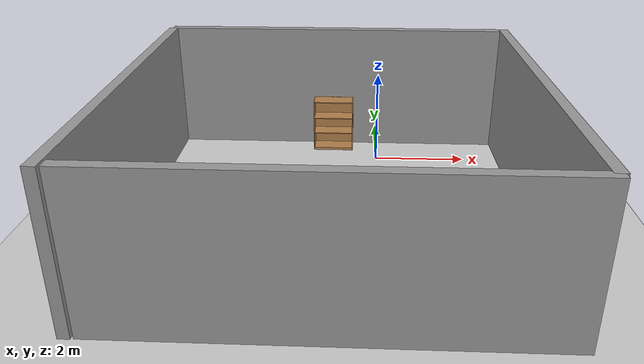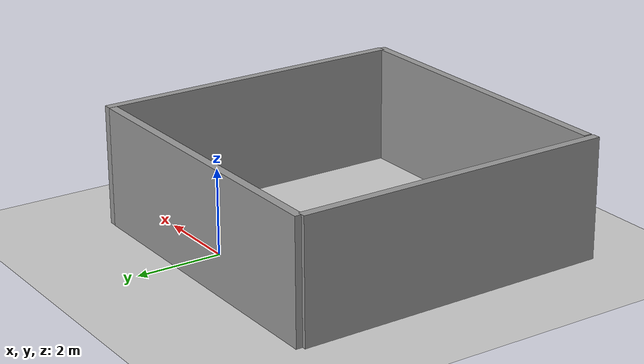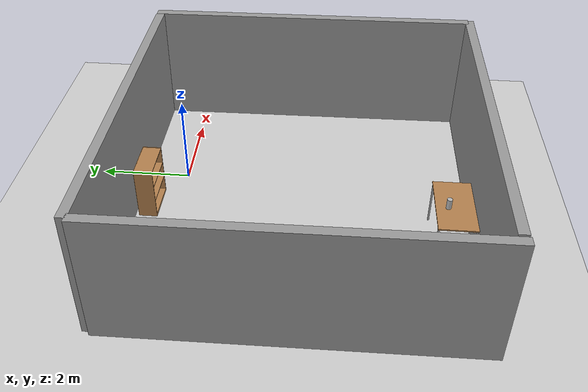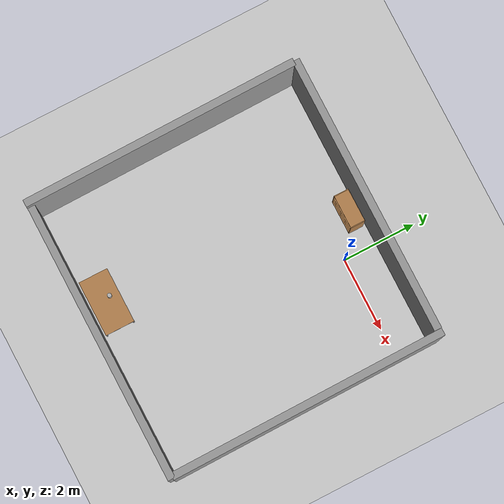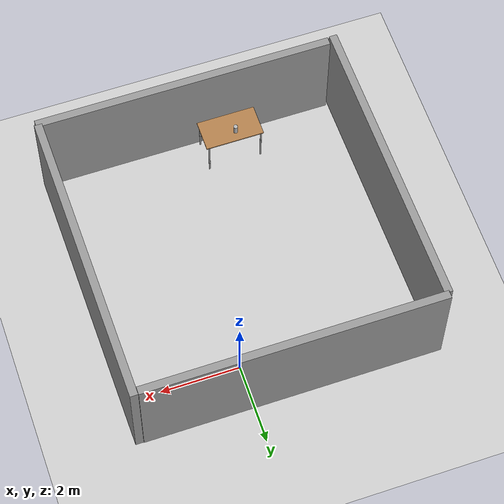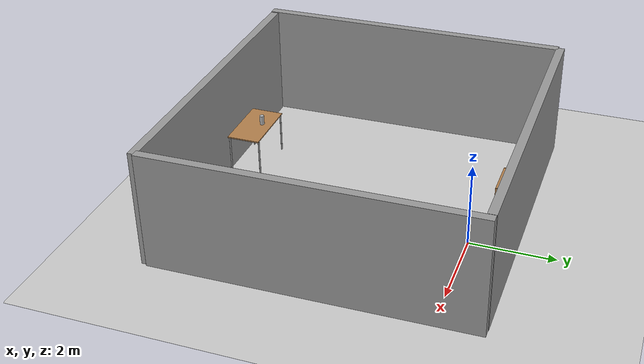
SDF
<sdf version="1.4">
 <world name="default">
  <light name="sun" type="directional">
   <pose>0 0 10 0 -0 0</pose>
   <diffuse>0.8 0.8 0.8 1</diffuse>
   <specular>0.2 0.2 0.2 1</specular>
   <attenuation>
    <range>1000</range>
    <constant>0.9</constant>
    <linear>0.01</linear>
    <quadratic>0.001</quadratic>
   </attenuation>
   <direction>-0.5 0.1 -0.9</direction>
  </light>
  <model name="ground_plane">
   <static>1</static>
   <link name="link">
    <collision name="collision">
     <geometry><plane><normal>0 0 1</normal><size>100 100</size></plane></geometry>
     <surface><friction><ode><mu>100</mu><mu2>50</mu2></ode></friction></surface>
    </collision>
    <visual name="visual">
     <cast_shadows>0</cast_shadows>
     <geometry><plane><normal>0 0 1</normal><size>100 100</size></plane></geometry>
     <material>
      <script><uri>file://media/materials/scripts/gazebo.material</uri><name>Gazebo/Grey</name></script>
     </material>
    </visual>
    <velocity_decay><linear>0</linear><angular>0</angular></velocity_decay>
   </link>
  </model>
  <physics type="ode">
   <max_step_size>0.001</max_step_size>
   <real_time_factor>1</real_time_factor>
   <real_time_update_rate>1000</real_time_update_rate>
   <gravity>0 0 -9.8</gravity>
  </physics>
  <scene><ambient>0.4 0.4 0.4 1</ambient><background>0.7 0.7 0.7 1</background><shadows>1</shadows></scene>
  <model name="bookshelf">
   <static>1</static>
   <link name="link">
    <inertial><mass>1</mass></inertial>
    <collision name="back">
     <pose>0 0.005 0.6 0 -0 0</pose>
     <geometry><box><size>0.9 0.01 1.2</size></box></geometry>
    </collision>
    <visual name="visual1">
     <pose>0 0.005 0.6 0 -0 0</pose>
     <geometry><box><size>0.9 0.01 1.2</size></box></geometry>
     <material>
      <script><uri>file://media/materials/scripts/gazebo.material</uri><name>Gazebo/Wood</name></script>
     </material>
    </visual>
    <collision name="left_side">
     <pose>0.45 -0.195 0.6 0 -0 0</pose>
     <geometry><box><size>0.02 0.4 1.2</size></box></geometry>
    </collision>
    <visual name="visual2">
     <pose>0.45 -0.195 0.6 0 -0 0</pose>
     <geometry><box><size>0.02 0.4 1.2</size></box></geometry>
     <material>
      <script><uri>file://media/materials/scripts/gazebo.material</uri><name>Gazebo/Wood</name></script>
     </material>
    </visual>
    <collision name="right_side">
     <pose>-0.45 -0.195 0.6 0 -0 0</pose>
     <geometry><box><size>0.02 0.4 1.2</size></box></geometry>
    </collision>
    <visual name="visual3">
     <pose>-0.45 -0.195 0.6 0 -0 0</pose>
     <geometry><box><size>0.02 0.4 1.2</size></box></geometry>
     <material>
      <script><uri>file://media/materials/scripts/gazebo.material</uri><name>Gazebo/Wood</name></script>
     </material>
    </visual>
    <collision name="bottom">
     <pose>0 -0.195 0.03 0 -0 0</pose>
     <geometry><box><size>0.88 0.4 0.06</size></box></geometry>
    </collision>
    <visual name="visual4">
     <pose>0 -0.195 0.03 0 -0 0</pose>
     <geometry><box><size>0.88 0.4 0.06</size></box></geometry>
     <material>
      <script><uri>file://media/materials/scripts/gazebo.material</uri><name>Gazebo/Wood</name></script>
     </material>
    </visual>
    <collision name="top">
     <pose>0 -0.195 1.19 0 -0 0</pose>
     <geometry><box><size>0.88 0.4 0.02</size></box></geometry>
    </collision>
    <visual name="visual5">
     <pose>0 -0.195 1.19 0 -0 0</pose>
     <geometry><box><size>0.88 0.4 0.02</size></box></geometry>
     <material>
      <script><uri>file://media/materials/scripts/gazebo.material</uri><name>Gazebo/Wood</name></script>
     </material>
    </visual>
    <collision name="low_shelf">
     <pose>0 -0.195 0.43 0 -0 0</pose>
     <geometry><box><size>0.88 0.4 0.02</size></box></geometry>
    </collision>
    <visual name="visual6">
     <pose>0 -0.195 0.43 0 -0 0</pose>
     <geometry><box><size>0.88 0.4 0.02</size></box></geometry>
     <material>
      <script><uri>file://media/materials/scripts/gazebo.material</uri><name>Gazebo/Wood</name></script>
     </material>
    </visual>
    <collision name="high_shelf">
     <pose>0 -0.195 0.8 0 -0 0</pose>
     <geometry><box><size>0.88 0.4 0.02</size></box></geometry>
    </collision>
    <visual name="visual7">
     <pose>0 -0.195 0.8 0 -0 0</pose>
     <geometry><box><size>0.88 0.4 0.02</size></box></geometry>
     <material>
      <script><uri>file://media/materials/scripts/gazebo.material</uri><name>Gazebo/Wood</name></script>
     </material>
    </visual>
    <velocity_decay><linear>0</linear><angular>0</angular></velocity_decay>
   </link>
   <pose>-1.01329 0.813945 0 0 -0 0</pose>
  </model>
  <model name="grey_wall">
   <static>1</static>
   <link name="link">
    <pose>0 0 1.4 0 -0 0</pose>
    <collision name="collision"><geometry><box><size>7.5 0.2 2.8</size></box></geometry></collision>
    <visual name="visual">
     <cast_shadows>0</cast_shadows>
     <geometry><box><size>7.5 0.2 2.8</size></box></geometry>
     <material>
      <script>
       <uri>model://grey_wall/materials/scripts</uri>
       <uri>model://grey_wall/materials/textures</uri>
       <name>vrc/grey_wall</name>
      </script>
     </material>
    </visual>
    <velocity_decay><linear>0</linear><angular>0</angular></velocity_decay>
   </link>
   <pose>-1 1 0 0 -0 0</pose>
  </model>
  <model name="grey_wall_0">
   <static>1</static>
   <link name="link">
    <pose>0 0 1.4 0 -0 0</pose>
    <collision name="collision"><geometry><box><size>7.5 0.2 2.8</size></box></geometry></collision>
    <visual name="visual">
     <cast_shadows>0</cast_shadows>
     <geometry><box><size>7.5 0.2 2.8</size></box></geometry>
     <material>
      <script>
       <uri>model://grey_wall/materials/scripts</uri>
       <uri>model://grey_wall/materials/textures</uri>
       <name>vrc/grey_wall</name>
      </script>
     </material>
    </visual>
    <velocity_decay><linear>0</linear><angular>0</angular></velocity_decay>
   </link>
   <pose>2.89589 -2.65981 0 0 0 -1.56</pose>
  </model>
  <model name="grey_wall_1">
   <static>1</static>
   <link name="link">
    <pose>0 0 1.4 0 -0 0</pose>
    <collision name="collision"><geometry><box><size>7.5 0.2 2.8</size></box></geometry></collision>
    <visual name="visual">
     <cast_shadows>0</cast_shadows>
     <geometry><box><size>7.5 0.2 2.8</size></box></geometry>
     <material>
      <script>
       <uri>model://grey_wall/materials/scripts</uri>
       <uri>model://grey_wall/materials/textures</uri>
       <name>vrc/grey_wall</name>
      </script>
     </material>
    </visual>
    <velocity_decay><linear>0</linear><angular>0</angular></velocity_decay>
   </link>
   <pose>-0.759072 -6.44121 0 0 -0 0</pose>
  </model>
  <model name="grey_wall_2">
   <static>1</static>
   <link name="link">
    <pose>0 0 1.4 0 -0 0</pose>
    <collision name="collision"><geometry><box><size>7.5 0.2 2.8</size></box></geometry></collision>
    <visual name="visual">
     <cast_shadows>0</cast_shadows>
     <geometry><box><size>7.5 0.2 2.8</size></box></geometry>
     <material>
      <script>
       <uri>model://grey_wall/materials/scripts</uri>
       <uri>model://grey_wall/materials/textures</uri>
       <name>vrc/grey_wall</name>
      </script>
     </material>
    </visual>
    <velocity_decay><linear>0</linear><angular>0</angular></velocity_decay>
   </link>
   <pose>-4.69246 -2.80168 0 0 0 -1.56</pose>
  </model>
  <model name="table">
   <static>1</static>
   <link name="link">
    <collision name="surface">
     <pose>0 0 1 0 -0 0</pose>
     <geometry><box><size>1.5 0.8 0.03</size></box></geometry>
    </collision>
    <visual name="visual1">
     <pose>0 0 1 0 -0 0</pose>
     <geometry><box><size>1.5 0.8 0.03</size></box></geometry>
     <material>
      <script><uri>file://media/materials/scripts/gazebo.material</uri><name>Gazebo/Wood</name></script>
     </material>
    </visual>
    <collision name="front_left_leg">
     <pose>0.68 0.38 0.5 0 -0 0</pose>
     <geometry><cylinder><radius>0.02</radius><length>1</length></cylinder></geometry>
    </collision>
    <visual name="front_left_leg">
     <pose>0.68 0.38 0.5 0 -0 0</pose>
     <geometry><cylinder><radius>0.02</radius><length>1</length></cylinder></geometry>
     <material>
      <script><uri>file://media/materials/scripts/gazebo.material</uri><name>Gazebo/Grey</name></script>
     </material>
    </visual>
    <collision name="front_right_leg">
     <pose>0.68 -0.38 0.5 0 -0 0</pose>
     <geometry><cylinder><radius>0.02</radius><length>1</length></cylinder></geometry>
    </collision>
    <visual name="front_right_leg">
     <pose>0.68 -0.38 0.5 0 -0 0</pose>
     <geometry><cylinder><radius>0.02</radius><length>1</length></cylinder></geometry>
     <material>
      <script><uri>file://media/materials/scripts/gazebo.material</uri><name>Gazebo/Grey</name></script>
     </material>
    </visual>
    <collision name="back_right_leg">
     <pose>-0.68 -0.38 0.5 0 -0 0</pose>
     <geometry><cylinder><radius>0.02</radius><length>1</length></cylinder></geometry>
    </collision>
    <visual name="back_right_leg">
     <pose>-0.68 -0.38 0.5 0 -0 0</pose>
     <geometry><cylinder><radius>0.02</radius><length>1</length></cylinder></geometry>
     <material>
      <script><uri>file://media/materials/scripts/gazebo.material</uri><name>Gazebo/Grey</name></script>
     </material>
    </visual>
    <collision name="back_left_leg">
     <pose>-0.68 0.38 0.5 0 -0 0</pose>
     <geometry><cylinder><radius>0.02</radius><length>1</length></cylinder></geometry>
    </collision>
    <visual name="back_left_leg">
     <pose>-0.68 0.38 0.5 0 -0 0</pose>
     <geometry><cylinder><radius>0.02</radius><length>1</length></cylinder></geometry>
     <material>
      <script><uri>file://media/materials/scripts/gazebo.material</uri><name>Gazebo/Grey</name></script>
     </material>
    </visual>
    <velocity_decay><linear>0</linear><angular>0</angular></velocity_decay>
   </link>
   <pose>-1.75086 -5.88441 0 0 -0 0</pose>
  </model>
  <model name="beer">
   <link name="link">
    <pose>0 0 0.115 0 -0 0</pose>
    <inertial>
     <mass>0.39</mass>
     <inertia><ixx>0.00058</ixx><ixy>0</ixy><ixz>0</ixz><iyy>0.00058</iyy><iyz>0</iyz><izz>0.00019</izz></inertia>
    </inertial>
    <collision name="collision">
     <geometry><cylinder><radius>0.055</radius><length>0.23</length></cylinder></geometry>
    </collision>
    <visual name="visual">
     <geometry><cylinder><radius>0.055</radius><length>0.23</length></cylinder></geometry>
     <material>
      <script>
       <uri>model://beer/materials/scripts</uri>
       <uri>model://beer/materials/textures</uri>
       <name>Beer/Diffuse</name>
      </script>
     </material>
    </visual>
    <velocity_decay><linear>0</linear><angular>0</angular></velocity_decay>
   </link>
   <pose>-1.846 -5.74185 1.01499 -1e-06 2.7e-05 0.000267</pose>
   <static>0</static>
  </model>
 </world>
</sdf>
